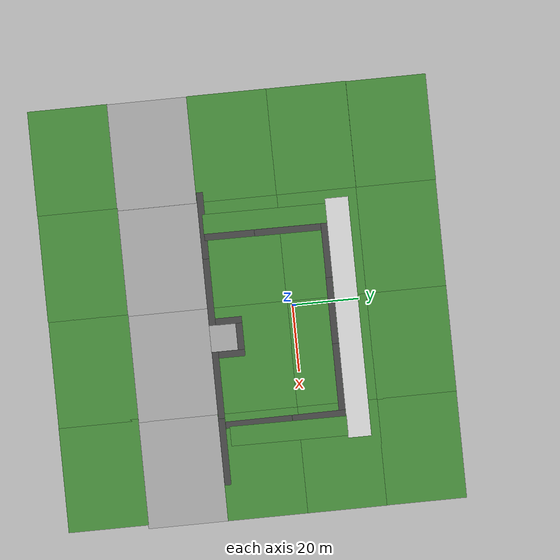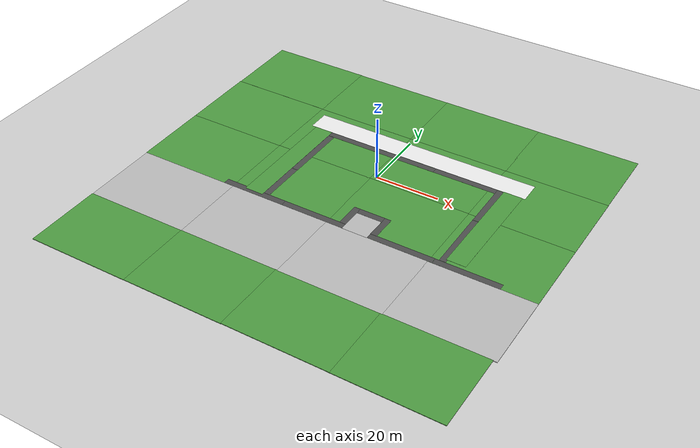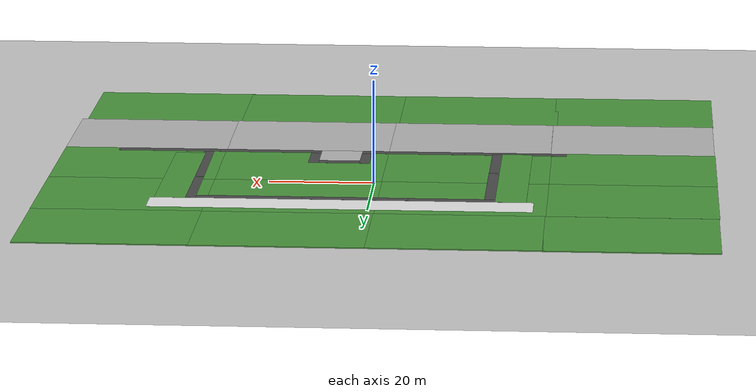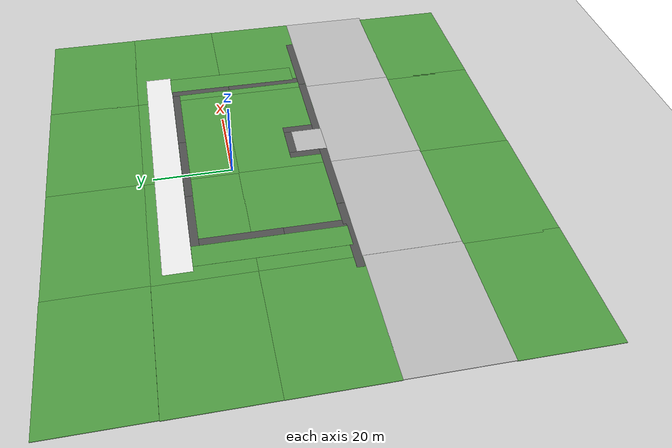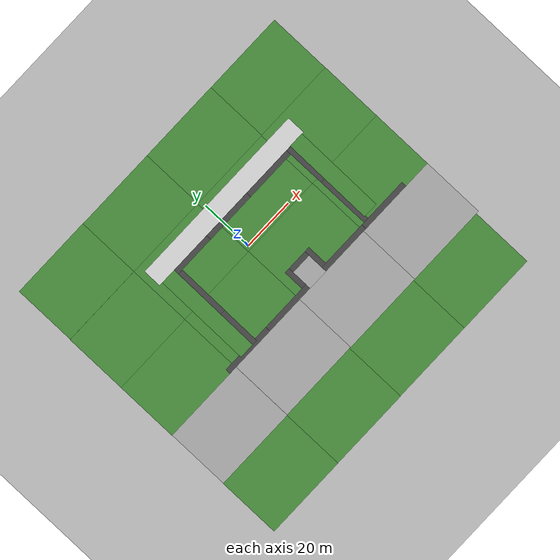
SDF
<sdf version="1.6">
 <world name="default">
  <light name="sun" type="directional">
   <pose>0 0 10 0 -0 0</pose>
   <diffuse>1 1 1 1</diffuse>
   <specular>1 1 1 1</specular>
   <attenuation>
    <range>1000</range>
    <constant>0.9</constant>
    <linear>0.01</linear>
    <quadratic>0.001</quadratic>
   </attenuation>
   <direction>-0.5 0.5 -1</direction>
  </light>
  <model name="ground_plane">
   <static>1</static>
   <link name="link">
    <collision name="collision">
     <geometry><plane><normal>0 0 1</normal><size>500 500</size></plane></geometry>
     <surface><friction><ode><mu>100</mu><mu2>50</mu2></ode></friction></surface>
    </collision>
    <visual name="visual">
     <cast_shadows>0</cast_shadows>
     <geometry><plane><normal>0 0 1</normal><size>500 500</size></plane></geometry>
     <material>
      <script><uri>file://media/materials/scripts/gazebo.material</uri><name>Gazebo/Grey</name></script>
     </material>
    </visual>
   </link>
  </model>
  <gravity>0 0 -9.8</gravity>
  <magnetic_field>6e-06 2.3e-05 -4.2e-05</magnetic_field>
  <atmosphere type="adiabatic"/>
  <physics name="default_physics" default="0" type="ode">
   <max_step_size>0.001</max_step_size>
   <real_time_factor>1</real_time_factor>
   <real_time_update_rate>1000</real_time_update_rate>
  </physics>
  <scene><ambient>0.4 0.4 0.4 1</ambient><background>0.7 0.7 0.7 1</background><shadows>0</shadows></scene>
  <spherical_coordinates>
   <surface_model>EARTH_WGS84</surface_model>
   <latitude_deg>0</latitude_deg>
   <longitude_deg>0</longitude_deg>
   <elevation>0</elevation>
   <heading_deg>0</heading_deg>
  </spherical_coordinates>
  <model name="mud_box_clone_clone_0">
   <static>1</static>
   <link name="link">
    <collision name="collision"><geometry><box><size>32 24 0.2</size></box></geometry></collision>
    <visual name="visual_1">
     <cast_shadows>0</cast_shadows>
     <geometry><box><size>32 24 0.2</size></box></geometry>
     <material>
      <script>
       <uri>model://amphi_driving_terrain/materials/scripts</uri>
       <uri>model://amphi_driving_terrain/materials/textures</uri>
       <name>vrc/grass_singlewater_terrain</name>
      </script>
     </material>
    </visual>
   </link>
   <pose>14.6721 -13.3698 -0.08 0 -0 3.14159</pose>
  </model>
  <model name="grass_box">
   <static>1</static>
   <link name="link">
    <collision name="collision"><geometry><box><size>32 24 0.2</size></box></geometry></collision>
    <visual name="visual_1">
     <cast_shadows>0</cast_shadows>
     <geometry><box><size>32 24 0.2</size></box></geometry>
     <material>
      <script>
       <uri>model://amphi_driving_terrain/materials/scripts</uri>
       <uri>model://amphi_driving_terrain/materials/textures</uri>
       <name>vrc/water</name>
      </script>
     </material>
    </visual>
   </link>
   <pose>14.672 -37.3564 -0.08 0 -0 3.14159</pose>
  </model>
  <model name="grass_box_clone">
   <static>1</static>
   <link name="link">
    <collision name="collision"><geometry><box><size>32 24 0.2</size></box></geometry></collision>
    <visual name="visual_1">
     <cast_shadows>0</cast_shadows>
     <geometry><box><size>32 24 0.2</size></box></geometry>
     <material>
      <script>
       <uri>model://amphi_driving_terrain/materials/scripts</uri>
       <uri>model://amphi_driving_terrain/materials/textures</uri>
       <name>vrc/grass_rock</name>
      </script>
     </material>
    </visual>
   </link>
   <pose>14.5837 10.4891 -0.08 0 -0 3.14159</pose>
  </model>
  <model name="grass_box_clone_clone">
   <static>1</static>
   <link name="link">
    <collision name="collision"><geometry><box><size>32 24 0.2</size></box></geometry></collision>
    <visual name="visual_1">
     <cast_shadows>0</cast_shadows>
     <geometry><box><size>32 24 0.2</size></box></geometry>
     <material>
      <script>
       <uri>model://amphi_driving_terrain/materials/scripts</uri>
       <uri>model://amphi_driving_terrain/materials/textures</uri>
       <name>vrc/grass_rock</name>
      </script>
     </material>
    </visual>
   </link>
   <pose>-17.222 -13.4006 -0.08 0 -0 3.14159</pose>
  </model>
  <model name="grass_box_clone_clone_clone">
   <static>1</static>
   <link name="link">
    <collision name="collision"><geometry><box><size>32 24 0.2</size></box></geometry></collision>
    <visual name="visual_1">
     <cast_shadows>0</cast_shadows>
     <geometry><box><size>32 24 0.2</size></box></geometry>
     <material>
      <script>
       <uri>model://amphi_driving_terrain/materials/scripts</uri>
       <uri>model://amphi_driving_terrain/materials/textures</uri>
       <name>vrc/water</name>
      </script>
     </material>
    </visual>
   </link>
   <pose>-17.067 -37.3951 -0.080293 0 -0 3.14159</pose>
  </model>
  <model name="grass_box_clone_clone_clone_0">
   <static>1</static>
   <link name="link">
    <collision name="collision"><geometry><box><size>32 24 0.2</size></box></geometry></collision>
    <visual name="visual_1">
     <cast_shadows>0</cast_shadows>
     <geometry><box><size>32 24 0.2</size></box></geometry>
     <material>
      <script>
       <uri>model://amphi_driving_terrain/materials/scripts</uri>
       <uri>model://amphi_driving_terrain/materials/textures</uri>
       <name>vrc/grass_rock</name>
      </script>
     </material>
    </visual>
   </link>
   <pose>-17.2124 10.4585 -0.08 0 -0 3.14159</pose>
  </model>
  <model name="grass_box_clone_clone_0">
   <static>1</static>
   <link name="link">
    <collision name="collision"><geometry><box><size>32 24 0.2</size></box></geometry></collision>
    <visual name="visual_1">
     <cast_shadows>0</cast_shadows>
     <geometry><box><size>32 24 0.2</size></box></geometry>
     <material>
      <script>
       <uri>model://amphi_driving_terrain/materials/scripts</uri>
       <uri>model://amphi_driving_terrain/materials/textures</uri>
       <name>vrc/grass_terrain_wowater</name>
      </script>
     </material>
    </visual>
   </link>
   <pose>46.5693 10.5604 -0.08 0 -0 3.14159</pose>
  </model>
  <model name="grass_box_clone_clone_0_clone">
   <static>1</static>
   <link name="link">
    <collision name="collision"><geometry><box><size>32 24 0.2</size></box></geometry></collision>
    <visual name="visual_1">
     <cast_shadows>0</cast_shadows>
     <geometry><box><size>32 24 0.2</size></box></geometry>
     <material>
      <script>
       <uri>model://amphi_driving_terrain/materials/scripts</uri>
       <uri>model://amphi_driving_terrain/materials/textures</uri>
       <name>vrc/grass_terrain_wowater</name>
      </script>
     </material>
    </visual>
   </link>
   <pose>46.5634 -13.4125 -0.08 0 -0 3.14159</pose>
  </model>
  <model name="grass_box_clone_clone_0_clone_clone">
   <static>1</static>
   <link name="link">
    <collision name="collision"><geometry><box><size>32 24 0.2</size></box></geometry></collision>
    <visual name="visual_1">
     <cast_shadows>0</cast_shadows>
     <geometry><box><size>32 24 0.2</size></box></geometry>
     <material>
      <script>
       <uri>model://amphi_driving_terrain/materials/scripts</uri>
       <uri>model://amphi_driving_terrain/materials/textures</uri>
       <name>vrc/water</name>
      </script>
     </material>
    </visual>
   </link>
   <pose>46.5695 -37.3619 -0.08 0 -0 3.14159</pose>
  </model>
  <model name="grass_box_clone_clone_clone_0_clone">
   <static>1</static>
   <link name="link">
    <collision name="collision"><geometry><box><size>32 24 0.2</size></box></geometry></collision>
    <visual name="visual_1">
     <cast_shadows>0</cast_shadows>
     <geometry><box><size>32 24 0.2</size></box></geometry>
     <material>
      <script>
       <uri>model://amphi_driving_terrain/materials/scripts</uri>
       <uri>model://amphi_driving_terrain/materials/textures</uri>
       <name>vrc/grass_terrain_wowater</name>
      </script>
     </material>
    </visual>
   </link>
   <pose>-17.1833 34.3971 -0.08 0 -0 3.14159</pose>
  </model>
  <model name="grass_box_clone_clone_1">
   <static>1</static>
   <link name="link">
    <collision name="collision"><geometry><box><size>32 24 0.2</size></box></geometry></collision>
    <visual name="visual_1">
     <cast_shadows>0</cast_shadows>
     <geometry><box><size>32 24 0.2</size></box></geometry>
     <material>
      <script>
       <uri>model://amphi_driving_terrain/materials/scripts</uri>
       <uri>model://amphi_driving_terrain/materials/textures</uri>
       <name>vrc/grass_terrain_wowater</name>
      </script>
     </material>
    </visual>
   </link>
   <pose>14.7727 34.4198 -0.08 0 -0 3.14159</pose>
  </model>
  <model name="grass_box_clone_clone_2">
   <static>1</static>
   <link name="link">
    <collision name="collision"><geometry><box><size>32 24 0.2</size></box></geometry></collision>
    <visual name="visual_1">
     <cast_shadows>0</cast_shadows>
     <geometry><box><size>32 24 0.2</size></box></geometry>
     <material>
      <script>
       <uri>model://amphi_driving_terrain/materials/scripts</uri>
       <uri>model://amphi_driving_terrain/materials/textures</uri>
       <name>vrc/grass_terrain_wowater</name>
      </script>
     </material>
    </visual>
   </link>
   <pose>46.5185 34.3856 -0.08 0 -0 3.14159</pose>
  </model>
  <model name="grass_box_clone_clone_clone_clone">
   <static>1</static>
   <link name="link">
    <collision name="collision"><geometry><box><size>32 24 0.2</size></box></geometry></collision>
    <visual name="visual_1">
     <cast_shadows>0</cast_shadows>
     <geometry><box><size>32 24 0.2</size></box></geometry>
     <material>
      <script>
       <uri>model://amphi_driving_terrain/materials/scripts</uri>
       <uri>model://amphi_driving_terrain/materials/textures</uri>
       <name>vrc/water</name>
      </script>
     </material>
    </visual>
   </link>
   <pose>-49.0814 -37.4177 -0.08 0 -0 3.14159</pose>
  </model>
  <model name="grass_box_clone_clone_clone_clone_0">
   <static>1</static>
   <link name="link">
    <collision name="collision"><geometry><box><size>32 24 0.2</size></box></geometry></collision>
    <visual name="visual_1">
     <cast_shadows>0</cast_shadows>
     <geometry><box><size>32 24 0.2</size></box></geometry>
     <material>
      <script>
       <uri>model://amphi_driving_terrain/materials/scripts</uri>
       <uri>model://amphi_driving_terrain/materials/textures</uri>
       <name>vrc/grass_terrain_wowater</name>
      </script>
     </material>
    </visual>
   </link>
   <pose>-49.187 -13.4873 -0.08 0 -0 3.14159</pose>
  </model>
  <model name="grass_box_clone_clone_clone_clone_1">
   <static>1</static>
   <link name="link">
    <collision name="collision"><geometry><box><size>32 24 0.2</size></box></geometry></collision>
    <visual name="visual_1">
     <cast_shadows>0</cast_shadows>
     <geometry><box><size>32 24 0.2</size></box></geometry>
     <material>
      <script>
       <uri>model://amphi_driving_terrain/materials/scripts</uri>
       <uri>model://amphi_driving_terrain/materials/textures</uri>
       <name>vrc/grass_terrain_wowater</name>
      </script>
     </material>
    </visual>
   </link>
   <pose>-49.1634 10.4704 -0.08 0 -0 3.14159</pose>
  </model>
  <model name="grass_box_clone_clone_clone_clone_1_clone">
   <static>1</static>
   <link name="link">
    <collision name="collision"><geometry><box><size>32 24 0.2</size></box></geometry></collision>
    <visual name="visual_1">
     <cast_shadows>0</cast_shadows>
     <geometry><box><size>32 24 0.2</size></box></geometry>
     <material>
      <script>
       <uri>model://amphi_driving_terrain/materials/scripts</uri>
       <uri>model://amphi_driving_terrain/materials/textures</uri>
       <name>vrc/grass_terrain_wowater</name>
      </script>
     </material>
    </visual>
   </link>
   <pose>-49.0229 34.4871 -0.08 0 -0 3.14159</pose>
  </model>
  <model name="grass_box_clone_clone_clone_clone_1_clone_clone">
   <static>1</static>
   <link name="link">
    <collision name="collision"><geometry><box><size>32 24 0.2</size></box></geometry></collision>
    <visual name="visual_1">
     <cast_shadows>0</cast_shadows>
     <geometry><box><size>32 24 0.2</size></box></geometry>
     <material>
      <script>
       <uri>model://amphi_driving_terrain/materials/scripts</uri>
       <uri>model://amphi_driving_terrain/materials/textures</uri>
       <name>vrc/grass_terrain_wowater</name>
      </script>
     </material>
    </visual>
   </link>
   <pose>-49.1958 -61.3395 -0.08 0 -0 3.14159</pose>
  </model>
  <model name="grass_box_clone_clone_clone_clone_1_clone_clone_clone">
   <static>1</static>
   <link name="link">
    <collision name="collision"><geometry><box><size>32 24 0.2</size></box></geometry></collision>
    <visual name="visual_1">
     <cast_shadows>0</cast_shadows>
     <geometry><box><size>32 24 0.2</size></box></geometry>
     <material>
      <script>
       <uri>model://amphi_driving_terrain/materials/scripts</uri>
       <uri>model://amphi_driving_terrain/materials/textures</uri>
       <name>vrc/grass_terrain_wowater</name>
      </script>
     </material>
    </visual>
   </link>
   <pose>-17.8284 -61.2824 -0.08 0 -0 3.14159</pose>
  </model>
  <model name="grass_box_clone_clone_clone_clone_1_clone_clone_clone_0">
   <static>1</static>
   <link name="link">
    <collision name="collision"><geometry><box><size>32 24 0.2</size></box></geometry></collision>
    <visual name="visual_1">
     <cast_shadows>0</cast_shadows>
     <geometry><box><size>32 24 0.2</size></box></geometry>
     <material>
      <script>
       <uri>model://amphi_driving_terrain/materials/scripts</uri>
       <uri>model://amphi_driving_terrain/materials/textures</uri>
       <name>vrc/grass_terrain_wowater</name>
      </script>
     </material>
    </visual>
   </link>
   <pose>14.0766 -61.1826 -0.08 0 -0 3.14159</pose>
  </model>
  <model name="grass_box_clone_clone_clone_clone_1_clone_clone_clone_1">
   <static>1</static>
   <link name="link">
    <collision name="collision"><geometry><box><size>32 24 0.2</size></box></geometry></collision>
    <visual name="visual_1">
     <cast_shadows>0</cast_shadows>
     <geometry><box><size>32 24 0.2</size></box></geometry>
     <material>
      <script>
       <uri>model://amphi_driving_terrain/materials/scripts</uri>
       <uri>model://amphi_driving_terrain/materials/textures</uri>
       <name>vrc/grass_terrain_wowater</name>
      </script>
     </material>
    </visual>
   </link>
   <pose>45.4634 -61.2177 -0.08 0 -0 3.14159</pose>
  </model>
  <model name="grass_box_clone_0">
   <static>1</static>
   <link name="link">
    <collision name="collision"><geometry><box><size>8 8 0.2</size></box></geometry></collision>
    <visual name="visual_1">
     <cast_shadows>0</cast_shadows>
     <geometry><box><size>8 8 0.2</size></box></geometry>
     <material>
      <script>
       <uri>model://amphi_driving_terrain/materials/scripts</uri>
       <uri>model://amphi_driving_terrain/materials/textures</uri>
       <name>vrc/water</name>
      </script>
     </material>
    </visual>
   </link>
   <pose>7.83239 -21.4447 -0.077574 0 -0 3.14159</pose>
  </model>
  <model name="grass_box_clone_1">
   <static>1</static>
   <link name="link">
    <collision name="collision"><geometry><box><size>72 7 0.2</size></box></geometry></collision>
    <visual name="visual_1">
     <cast_shadows>0</cast_shadows>
     <geometry><box><size>72 7 0.2</size></box></geometry>
     <material>
      <script>
       <uri>model://amphi_driving_terrain/materials/scripts</uri>
       <uri>model://amphi_driving_terrain/materials/textures</uri>
       <name>vrc/road_whiteline</name>
      </script>
     </material>
    </visual>
   </link>
   <pose>5.30704 16.314 -0.075872 0 -0 3.14159</pose>
  </model>
  <model name="grass_box_clone_1_clone_clone">
   <static>1</static>
   <link name="link">
    <collision name="collision"><geometry><box><size>37.0582 5.89765 0.260292</size></box></geometry></collision>
    <visual name="visual_1">
     <cast_shadows>0</cast_shadows>
     <geometry><box><size>37.0582 5.89765 0.260292</size></box></geometry>
     <material>
      <script>
       <uri>model://amphi_driving_terrain/materials/scripts</uri>
       <uri>model://amphi_driving_terrain/materials/textures</uri>
       <name>vrc/road_grass</name>
      </script>
     </material>
    </visual>
   </link>
   <pose>-26.4592 -5.71255 -0.100932 0 -0 1.5651</pose>
  </model>
  <model name="grass_box_clone_1_clone_clone_clone">
   <static>1</static>
   <link name="link">
    <collision name="collision"><geometry><box><size>35.1389 5.86884 0.260292</size></box></geometry></collision>
    <visual name="visual_1">
     <cast_shadows>0</cast_shadows>
     <geometry><box><size>35.1389 5.86884 0.260292</size></box></geometry>
     <material>
      <script>
       <uri>model://amphi_driving_terrain/materials/scripts</uri>
       <uri>model://amphi_driving_terrain/materials/textures</uri>
       <name>vrc/road_grass</name>
      </script>
     </material>
    </visual>
   </link>
   <pose>37.5239 -4.64006 -0.100932 0 -0 1.5651</pose>
  </model>
  <model name="grass_box_clone_1_clone">
   <static>1</static>
   <link name="link">
    <collision name="collision"><geometry><box><size>20 2 0.2</size></box></geometry></collision>
    <visual name="visual_1">
     <cast_shadows>0</cast_shadows>
     <geometry><box><size>20 2 0.2</size></box></geometry>
     <material>
      <script>
       <uri>model://amphi_driving_terrain/materials/scripts</uri>
       <uri>model://amphi_driving_terrain/materials/textures</uri>
       <name>vrc/road_pavement</name>
      </script>
     </material>
    </visual>
   </link>
   <pose>22.7857 11.8079 -0.075872 0 -0 3.14159</pose>
  </model>
  <model name="grass_box_clone_1_clone_clone_0">
   <static>1</static>
   <link name="link">
    <collision name="collision"><geometry><box><size>16 2 0.2</size></box></geometry></collision>
    <visual name="visual_1">
     <cast_shadows>0</cast_shadows>
     <geometry><box><size>16 2 0.2</size></box></geometry>
     <material>
      <script>
       <uri>model://amphi_driving_terrain/materials/scripts</uri>
       <uri>model://amphi_driving_terrain/materials/textures</uri>
       <name>vrc/road_pavement</name>
      </script>
     </material>
    </visual>
   </link>
   <pose>33.8244 4.72553 -0.075872 0 -0 1.57624</pose>
  </model>
  <model name="grass_box_clone_1_clone_clone_0_clone">
   <static>1</static>
   <link name="link">
    <collision name="collision"><geometry><box><size>20 2 0.2</size></box></geometry></collision>
    <visual name="visual_1">
     <cast_shadows>0</cast_shadows>
     <geometry><box><size>20 2 0.2</size></box></geometry>
     <material>
      <script>
       <uri>model://amphi_driving_terrain/materials/scripts</uri>
       <uri>model://amphi_driving_terrain/materials/textures</uri>
       <name>vrc/road_pavement</name>
      </script>
     </material>
    </visual>
   </link>
   <pose>33.9128 -13.3522 -0.075872 0 -0 1.57624</pose>
  </model>
  <model name="grass_box_clone_1_clone_clone_1">
   <static>1</static>
   <link name="link">
    <collision name="collision"><geometry><box><size>20 2 0.2</size></box></geometry></collision>
    <visual name="visual_1">
     <cast_shadows>0</cast_shadows>
     <geometry><box><size>20 2 0.2</size></box></geometry>
     <material>
      <script>
       <uri>model://amphi_driving_terrain/materials/scripts</uri>
       <uri>model://amphi_driving_terrain/materials/textures</uri>
       <name>vrc/road_pavement</name>
      </script>
     </material>
    </visual>
   </link>
   <pose>2.78654 11.7838 -0.075872 0 -0 3.14159</pose>
  </model>
  <model name="grass_box_clone_1_clone_clone_1_clone">
   <static>1</static>
   <link name="link">
    <collision name="collision"><geometry><box><size>20 2 0.2</size></box></geometry></collision>
    <visual name="visual_1">
     <cast_shadows>0</cast_shadows>
     <geometry><box><size>20 2 0.2</size></box></geometry>
     <material>
      <script>
       <uri>model://amphi_driving_terrain/materials/scripts</uri>
       <uri>model://amphi_driving_terrain/materials/textures</uri>
       <name>vrc/road_pavement</name>
      </script>
     </material>
    </visual>
   </link>
   <pose>-17.0867 11.8353 -0.075872 0 -0 3.14159</pose>
  </model>
  <model name="grass_box_clone_1_clone_clone_0_clone_1">
   <static>1</static>
   <link name="link">
    <collision name="collision"><geometry><box><size>15 2 0.2</size></box></geometry></collision>
    <visual name="visual_1">
     <cast_shadows>0</cast_shadows>
     <geometry><box><size>15 2 0.2</size></box></geometry>
     <material>
      <script>
       <uri>model://amphi_driving_terrain/materials/scripts</uri>
       <uri>model://amphi_driving_terrain/materials/textures</uri>
       <name>vrc/road_pavement</name>
      </script>
     </material>
    </visual>
   </link>
   <pose>-22.596 -16.6713 -0.075872 0 -0 1.56518</pose>
  </model>
  <model name="grass_box_clone_1_clone_clone_0_clone_1_clone">
   <static>1</static>
   <link name="link">
    <collision name="collision"><geometry><box><size>20 2 0.2</size></box></geometry></collision>
    <visual name="visual_1">
     <cast_shadows>0</cast_shadows>
     <geometry><box><size>20 2 0.2</size></box></geometry>
     <material>
      <script>
       <uri>model://amphi_driving_terrain/materials/scripts</uri>
       <uri>model://amphi_driving_terrain/materials/textures</uri>
       <name>vrc/road_pavement</name>
      </script>
     </material>
    </visual>
   </link>
   <pose>-22.4511 0.811624 -0.075872 0 -0 1.56518</pose>
  </model>
  <model name="grass_box_clone_1_clone_clone_1_clone_0">
   <static>1</static>
   <link name="link">
    <collision name="collision"><geometry><box><size>20 2 0.2</size></box></geometry></collision>
    <visual name="visual_1">
     <cast_shadows>0</cast_shadows>
     <geometry><box><size>20 2 0.2</size></box></geometry>
     <material>
      <script>
       <uri>model://amphi_driving_terrain/materials/scripts</uri>
       <uri>model://amphi_driving_terrain/materials/textures</uri>
       <name>vrc/road_pavement</name>
      </script>
     </material>
    </visual>
   </link>
   <pose>-6.16283 -24.401 -0.075872 0 -0 3.14159</pose>
  </model>
  <model name="grass_box_clone_1_clone_clone_1_clone_0_clone">
   <static>1</static>
   <link name="link">
    <collision name="collision"><geometry><box><size>20 2 0.2</size></box></geometry></collision>
    <visual name="visual_1">
     <cast_shadows>0</cast_shadows>
     <geometry><box><size>20 2 0.2</size></box></geometry>
     <material>
      <script>
       <uri>model://amphi_driving_terrain/materials/scripts</uri>
       <uri>model://amphi_driving_terrain/materials/textures</uri>
       <name>vrc/road_pavement</name>
      </script>
     </material>
    </visual>
   </link>
   <pose>-26.186 -24.3974 -0.075872 0 -0 3.14159</pose>
  </model>
  <model name="grass_box_clone_1_clone_clone_1_clone_0_clone_clone">
   <static>1</static>
   <link name="link">
    <collision name="collision"><geometry><box><size>20 2 0.2</size></box></geometry></collision>
    <visual name="visual_1">
     <cast_shadows>0</cast_shadows>
     <geometry><box><size>20 2 0.2</size></box></geometry>
     <material>
      <script>
       <uri>model://amphi_driving_terrain/materials/scripts</uri>
       <uri>model://amphi_driving_terrain/materials/textures</uri>
       <name>vrc/road_pavement</name>
      </script>
     </material>
    </visual>
   </link>
   <pose>21.8427 -24.3612 -0.075872 0 -0 3.14159</pose>
  </model>
  <model name="grass_box_clone_1_clone_clone_1_clone_0_clone_clone_0">
   <static>1</static>
   <link name="link">
    <collision name="collision"><geometry><box><size>8 2 0.2</size></box></geometry></collision>
    <visual name="visual_1">
     <cast_shadows>0</cast_shadows>
     <geometry><box><size>8 2 0.2</size></box></geometry>
     <material>
      <script>
       <uri>model://amphi_driving_terrain/materials/scripts</uri>
       <uri>model://amphi_driving_terrain/materials/textures</uri>
       <name>vrc/road_pavement</name>
      </script>
     </material>
    </visual>
   </link>
   <pose>7.85886 -16.4432 -0.075872 0 -0 3.14159</pose>
  </model>
  <model name="grass_box_clone_1_clone_clone_1_clone_0_clone_0">
   <static>1</static>
   <link name="link">
    <collision name="collision"><geometry><box><size>20 2 0.2</size></box></geometry></collision>
    <visual name="visual_1">
     <cast_shadows>0</cast_shadows>
     <geometry><box><size>20 2 0.2</size></box></geometry>
     <material>
      <script>
       <uri>model://amphi_driving_terrain/materials/scripts</uri>
       <uri>model://amphi_driving_terrain/materials/textures</uri>
       <name>vrc/road_pavement</name>
      </script>
     </material>
    </visual>
   </link>
   <pose>41.8642 -24.407 -0.075872 0 -0 3.14159</pose>
  </model>
  <model name="grass_box_clone_1_clone_clone_1_clone_0_clone_clone_0_clone">
   <static>1</static>
   <link name="link">
    <collision name="collision"><geometry><box><size>8 2 0.2</size></box></geometry></collision>
    <visual name="visual_1">
     <cast_shadows>0</cast_shadows>
     <geometry><box><size>8 2 0.2</size></box></geometry>
     <material>
      <script>
       <uri>model://amphi_driving_terrain/materials/scripts</uri>
       <uri>model://amphi_driving_terrain/materials/textures</uri>
       <name>vrc/road_pavement</name>
      </script>
     </material>
    </visual>
   </link>
   <pose>12.8399 -19.4477 -0.075872 0 -0 1.56866</pose>
  </model>
  <model name="grass_box_clone_1_clone_clone_1_clone_0_clone_clone_0_clone_clone">
   <static>1</static>
   <link name="link">
    <collision name="collision"><geometry><box><size>8 2 0.2</size></box></geometry></collision>
    <visual name="visual_1">
     <cast_shadows>0</cast_shadows>
     <geometry><box><size>8 2 0.2</size></box></geometry>
     <material>
      <script>
       <uri>model://amphi_driving_terrain/materials/scripts</uri>
       <uri>model://amphi_driving_terrain/materials/textures</uri>
       <name>vrc/road_pavement</name>
      </script>
     </material>
    </visual>
   </link>
   <pose>2.90457 -19.4529 -0.075872 0 -0 1.56866</pose>
  </model>
 </world>
</sdf>
